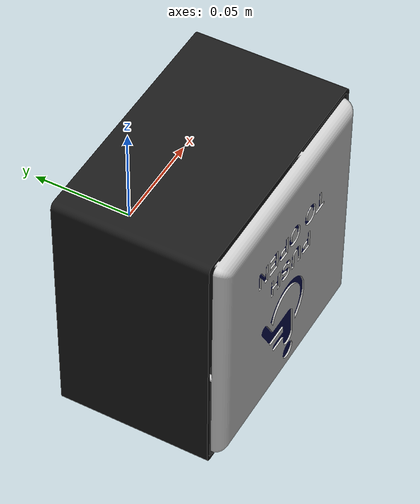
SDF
<?xml version="1.0" encoding="utf-8"?>
<sdf version="1.6">

<model name="wheelchairButton">
    <static>true</static>
  <link name='link_button'>
      <visual name='visual'>
        <pose frame=''>0 0 0 0 -0 0</pose>
        <geometry>
          <mesh>
            <uri>model://wheelchairButton/meshes/wheelchairButton.dae</uri>
            <scale>1 1 1</scale>
          </mesh>
        </geometry>
           	<material>
          <script>
            <uri>model://wheelchairButton/materials/scripts</uri>
            <uri>model://wheelchairButton/materials/textures</uri>
            <name>button</name>
          </script>
        </material>
        <cast_shadows>1</cast_shadows>
        <transparency>0</transparency>
      </visual>
      <collision name='collision'>
        <laser_retro>0</laser_retro>
        <max_contacts>10</max_contacts>
        <pose frame=''>0 0 0 0 -0 0</pose>
        <geometry>
          <mesh>
            <uri>model://wheelchairButton/meshes/wheelchairButton.dae</uri>
            <scale>1 1 1</scale>
          </mesh>
        </geometry>

      </collision>
    </link>
    <static>1</static>
    <allow_auto_disable>1</allow_auto_disable>
</model>

</sdf>
